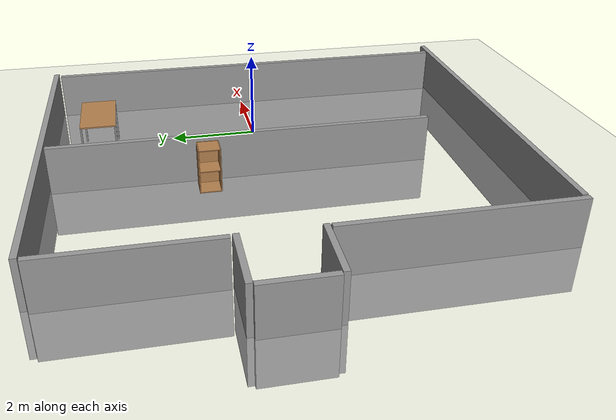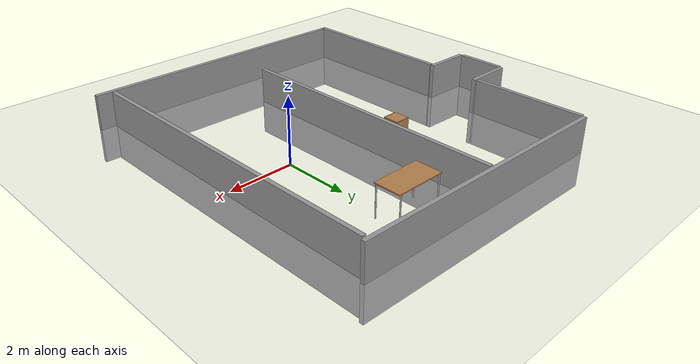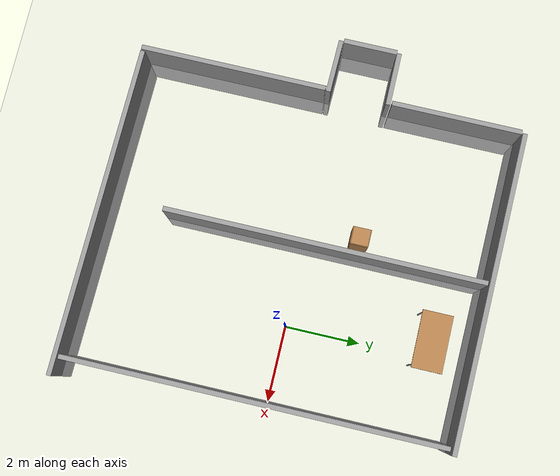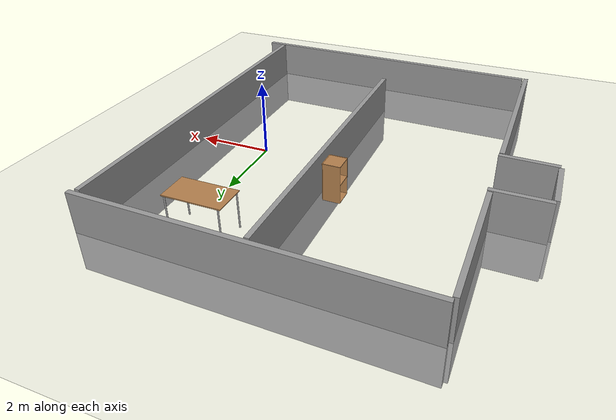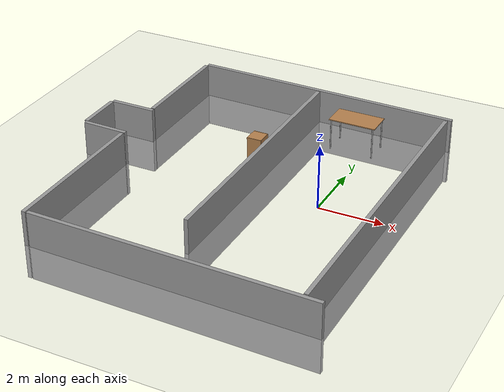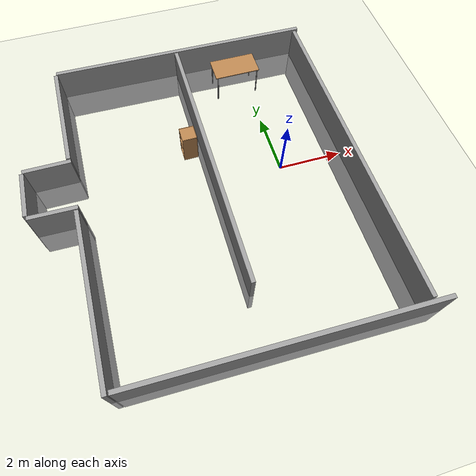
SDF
<sdf version="1.6">
 <world name="default">
  <model name="ground_plane">
   <static>1</static>
   <link name="link">
    <collision name="collision">
     <geometry><plane><normal>0 0 1</normal><size>100 100</size></plane></geometry>
     <surface>
      <contact><collide_bitmask>65535</collide_bitmask></contact>
      <friction><ode><mu>100</mu><mu2>50</mu2></ode></friction>
     </surface>
    </collision>
    <visual name="visual">
     <cast_shadows>0</cast_shadows>
     <geometry><plane><normal>0 0 1</normal><size>100 100</size></plane></geometry>
     <material>
      <script><uri>file://media/materials/scripts/gazebo.material</uri><name>Gazebo/Grey</name></script>
     </material>
    </visual>
   </link>
  </model>
  <model name="toiletenv">
   <link name="link_0">
    <inertial>
     <mass>3061.44</mass>
     <inertia><ixx>1709.99</ixx><ixy>0</ixy><ixz>0</ixz><iyy>1188.29</iyy><iyz>0</iyz><izz>529.767</izz></inertia>
    </inertial>
    <pose>-3.44068 0.35836 0 0 -0 0</pose>
    <gravity>0</gravity>
    <visual name="visual">
     <geometry><box><size>0.125789 1.43552 2.15452</size></box></geometry>
     <material>
      <lighting>1</lighting>
      <script><uri>file://media/materials/scripts/gazebo.material</uri><name>Gazebo/Grey</name></script>
      <shader type="vertex"><normal_map>__default__</normal_map></shader>
     </material>
    </visual>
    <collision name="collision">
     <geometry><box><size>0.125789 1.43552 2.15452</size></box></geometry>
     <surface>
      <friction>
       <ode><mu>1</mu><mu2>1</mu2><fdir1>0 0 0</fdir1><slip1>0</slip1><slip2>0</slip2></ode>
       <torsional>
        <coefficient>1</coefficient>
        <patch_radius>0</patch_radius>
        <surface_radius>0</surface_radius>
        <use_patch_radius>1</use_patch_radius>
        <ode><slip>0</slip></ode>
       </torsional>
      </friction>
      <bounce><restitution_coefficient>0</restitution_coefficient><threshold>1e+06</threshold></bounce>
      <contact>
       <collide_without_contact>0</collide_without_contact>
       <collide_without_contact_bitmask>1</collide_without_contact_bitmask>
       <collide_bitmask>1</collide_bitmask>
       <ode>
        <soft_cfm>0</soft_cfm>
        <soft_erp>0.2</soft_erp>
        <kp>1e+13</kp>
        <kd>1</kd>
        <max_vel>0.01</max_vel>
        <min_depth>0</min_depth>
       </ode>
       <bullet>
        <split_impulse>1</split_impulse>
        <split_impulse_penetration_threshold>-0.01</split_impulse_penetration_threshold>
        <soft_cfm>0</soft_cfm>
        <soft_erp>0.2</soft_erp>
        <kp>1e+13</kp>
        <kd>1</kd>
       </bullet>
      </contact>
     </surface>
    </collision>
   </link>
   <link name="link_0_clone">
    <inertial>
     <mass>3061.44</mass>
     <inertia><ixx>1709.99</ixx><ixy>0</ixy><ixz>0</ixz><iyy>1188.29</iyy><iyz>0</iyz><izz>529.767</izz></inertia>
    </inertial>
    <pose>-2.70872 1.14414 0 0 0 -1.57036</pose>
    <gravity>0</gravity>
    <visual name="visual">
     <geometry><box><size>0.125789 1.43552 2.15452</size></box></geometry>
     <material>
      <lighting>1</lighting>
      <script><uri>file://media/materials/scripts/gazebo.material</uri><name>Gazebo/Grey</name></script>
      <shader type="vertex"><normal_map>__default__</normal_map></shader>
     </material>
    </visual>
    <collision name="collision">
     <geometry><box><size>0.125789 1.43552 2.15452</size></box></geometry>
     <surface>
      <friction>
       <ode><mu>1</mu><mu2>1</mu2><fdir1>0 0 0</fdir1><slip1>0</slip1><slip2>0</slip2></ode>
       <torsional>
        <coefficient>1</coefficient>
        <patch_radius>0</patch_radius>
        <surface_radius>0</surface_radius>
        <use_patch_radius>1</use_patch_radius>
        <ode><slip>0</slip></ode>
       </torsional>
      </friction>
      <bounce><restitution_coefficient>0</restitution_coefficient><threshold>1e+06</threshold></bounce>
      <contact>
       <collide_without_contact>0</collide_without_contact>
       <collide_without_contact_bitmask>1</collide_without_contact_bitmask>
       <collide_bitmask>1</collide_bitmask>
       <ode>
        <soft_cfm>0</soft_cfm>
        <soft_erp>0.2</soft_erp>
        <kp>1e+13</kp>
        <kd>1</kd>
        <max_vel>0.01</max_vel>
        <min_depth>0</min_depth>
       </ode>
       <bullet>
        <split_impulse>1</split_impulse>
        <split_impulse_penetration_threshold>-0.01</split_impulse_penetration_threshold>
        <soft_cfm>0</soft_cfm>
        <soft_erp>0.2</soft_erp>
        <kp>1e+13</kp>
        <kd>1</kd>
       </bullet>
      </contact>
     </surface>
    </collision>
   </link>
   <link name="link_0_clone_0">
    <inertial>
     <mass>3061.44</mass>
     <inertia><ixx>1709.99</ixx><ixy>0</ixy><ixz>0</ixz><iyy>1188.29</iyy><iyz>0</iyz><izz>529.767</izz></inertia>
    </inertial>
    <pose>-2.70687 -0.448529 0 0 -0 1.54952</pose>
    <gravity>0</gravity>
    <visual name="visual">
     <geometry><box><size>0.125789 1.43552 2.15452</size></box></geometry>
     <material>
      <lighting>1</lighting>
      <script><uri>file://media/materials/scripts/gazebo.material</uri><name>Gazebo/Grey</name></script>
      <shader type="vertex"><normal_map>__default__</normal_map></shader>
     </material>
    </visual>
    <collision name="collision">
     <geometry><box><size>0.125789 1.43552 2.15452</size></box></geometry>
     <surface>
      <friction>
       <ode><mu>1</mu><mu2>1</mu2><fdir1>0 0 0</fdir1><slip1>0</slip1><slip2>0</slip2></ode>
       <torsional>
        <coefficient>1</coefficient>
        <patch_radius>0</patch_radius>
        <surface_radius>0</surface_radius>
        <use_patch_radius>1</use_patch_radius>
        <ode><slip>0</slip></ode>
       </torsional>
      </friction>
      <bounce><restitution_coefficient>0</restitution_coefficient><threshold>1e+06</threshold></bounce>
      <contact>
       <collide_without_contact>0</collide_without_contact>
       <collide_without_contact_bitmask>1</collide_without_contact_bitmask>
       <collide_bitmask>1</collide_bitmask>
       <ode>
        <soft_cfm>0</soft_cfm>
        <soft_erp>0.2</soft_erp>
        <kp>1e+13</kp>
        <kd>1</kd>
        <max_vel>0.01</max_vel>
        <min_depth>0</min_depth>
       </ode>
       <bullet>
        <split_impulse>1</split_impulse>
        <split_impulse_penetration_threshold>-0.01</split_impulse_penetration_threshold>
        <soft_cfm>0</soft_cfm>
        <soft_erp>0.2</soft_erp>
        <kp>1e+13</kp>
        <kd>1</kd>
       </bullet>
      </contact>
     </surface>
    </collision>
   </link>
   <link name="link_0_clone_1">
    <inertial>
     <mass>10647.6</mass>
     <inertia><ixx>26236.3</ixx><ixy>0</ixy><ixz>0</ixz><iyy>4132.83</iyy><iyz>0</iyz><izz>22131.5</izz></inertia>
    </inertial>
    <pose>-2.05907 -3.04924 0 0 -0 0</pose>
    <gravity>0</gravity>
    <visual name="visual">
     <geometry><box><size>0.125789 4.99268 2.15452</size></box></geometry>
     <material>
      <lighting>1</lighting>
      <script><uri>file://media/materials/scripts/gazebo.material</uri><name>Gazebo/Grey</name></script>
      <shader type="vertex"><normal_map>__default__</normal_map></shader>
     </material>
    </visual>
    <collision name="collision">
     <geometry><box><size>0.125789 4.99268 2.15452</size></box></geometry>
     <surface>
      <friction>
       <ode><mu>1</mu><mu2>1</mu2><fdir1>0 0 0</fdir1><slip1>0</slip1><slip2>0</slip2></ode>
       <torsional>
        <coefficient>1</coefficient>
        <patch_radius>0</patch_radius>
        <surface_radius>0</surface_radius>
        <use_patch_radius>1</use_patch_radius>
        <ode><slip>0</slip></ode>
       </torsional>
      </friction>
      <bounce><restitution_coefficient>0</restitution_coefficient><threshold>1e+06</threshold></bounce>
      <contact>
       <collide_without_contact>0</collide_without_contact>
       <collide_without_contact_bitmask>1</collide_without_contact_bitmask>
       <collide_bitmask>1</collide_bitmask>
       <ode>
        <soft_cfm>0</soft_cfm>
        <soft_erp>0.2</soft_erp>
        <kp>1e+13</kp>
        <kd>1</kd>
        <max_vel>0.01</max_vel>
        <min_depth>0</min_depth>
       </ode>
       <bullet>
        <split_impulse>1</split_impulse>
        <split_impulse_penetration_threshold>-0.01</split_impulse_penetration_threshold>
        <soft_cfm>0</soft_cfm>
        <soft_erp>0.2</soft_erp>
        <kp>1e+13</kp>
        <kd>1</kd>
       </bullet>
      </contact>
     </surface>
    </collision>
   </link>
   <link name="link_0_clone_2">
    <inertial>
     <mass>7404.1</mass>
     <inertia><ixx>10301.1</ixx><ixy>0</ixy><ixz>0</ixz><iyy>2873.89</iyy><iyz>0</iyz><izz>7446.75</izz></inertia>
    </inertial>
    <pose>-2.06068 2.98173 0 0 -0 0</pose>
    <gravity>0</gravity>
    <visual name="visual">
     <geometry><box><size>0.125789 3.47179 2.15452</size></box></geometry>
     <material>
      <lighting>1</lighting>
      <script><uri>file://media/materials/scripts/gazebo.material</uri><name>Gazebo/Grey</name></script>
      <shader type="vertex"><normal_map>__default__</normal_map></shader>
     </material>
    </visual>
    <collision name="collision">
     <geometry><box><size>0.125789 3.47179 2.15452</size></box></geometry>
     <surface>
      <friction>
       <ode><mu>1</mu><mu2>1</mu2><fdir1>0 0 0</fdir1><slip1>0</slip1><slip2>0</slip2></ode>
       <torsional>
        <coefficient>1</coefficient>
        <patch_radius>0</patch_radius>
        <surface_radius>0</surface_radius>
        <use_patch_radius>1</use_patch_radius>
        <ode><slip>0</slip></ode>
       </torsional>
      </friction>
      <bounce><restitution_coefficient>0</restitution_coefficient><threshold>1e+06</threshold></bounce>
      <contact>
       <collide_without_contact>0</collide_without_contact>
       <collide_without_contact_bitmask>1</collide_without_contact_bitmask>
       <collide_bitmask>1</collide_bitmask>
       <ode>
        <soft_cfm>0</soft_cfm>
        <soft_erp>0.2</soft_erp>
        <kp>1e+13</kp>
        <kd>1</kd>
        <max_vel>0.01</max_vel>
        <min_depth>0</min_depth>
       </ode>
       <bullet>
        <split_impulse>1</split_impulse>
        <split_impulse_penetration_threshold>-0.01</split_impulse_penetration_threshold>
        <soft_cfm>0</soft_cfm>
        <soft_erp>0.2</soft_erp>
        <kp>1e+13</kp>
        <kd>1</kd>
       </bullet>
      </contact>
     </surface>
    </collision>
   </link>
   <link name="link_0_clone_3">
    <inertial>
     <mass>18266.8</mass>
     <inertia><ixx>118745</ixx><ixy>0</ixy><ixz>0</ixz><iyy>7090.22</iyy><iyz>0</iyz><izz>111703</izz></inertia>
    </inertial>
    <pose>2.02981 0.357389 0 0 -0 0</pose>
    <gravity>0</gravity>
    <visual name="visual">
     <geometry><box><size>0.125789 8.56535 2.15452</size></box></geometry>
     <material>
      <lighting>1</lighting>
      <script><uri>file://media/materials/scripts/gazebo.material</uri><name>Gazebo/Grey</name></script>
      <shader type="vertex"><normal_map>__default__</normal_map></shader>
     </material>
    </visual>
    <collision name="collision">
     <geometry><box><size>0.125789 8.56535 2.15452</size></box></geometry>
     <surface>
      <friction>
       <ode><mu>1</mu><mu2>1</mu2><fdir1>0 0 0</fdir1><slip1>0</slip1><slip2>0</slip2></ode>
       <torsional>
        <coefficient>1</coefficient>
        <patch_radius>0</patch_radius>
        <surface_radius>0</surface_radius>
        <use_patch_radius>1</use_patch_radius>
        <ode><slip>0</slip></ode>
       </torsional>
      </friction>
      <bounce><restitution_coefficient>0</restitution_coefficient><threshold>1e+06</threshold></bounce>
      <contact>
       <collide_without_contact>0</collide_without_contact>
       <collide_without_contact_bitmask>1</collide_without_contact_bitmask>
       <collide_bitmask>1</collide_bitmask>
       <ode>
        <soft_cfm>0</soft_cfm>
        <soft_erp>0.2</soft_erp>
        <kp>1e+13</kp>
        <kd>1</kd>
        <max_vel>0.01</max_vel>
        <min_depth>0</min_depth>
       </ode>
       <bullet>
        <split_impulse>1</split_impulse>
        <split_impulse_penetration_threshold>-0.01</split_impulse_penetration_threshold>
        <soft_cfm>0</soft_cfm>
        <soft_erp>0.2</soft_erp>
        <kp>1e+13</kp>
        <kd>1</kd>
       </bullet>
      </contact>
     </surface>
    </collision>
   </link>
   <link name="link_0_clone_3_clone">
    <inertial>
     <mass>21541</mass>
     <inertia><ixx>191473</ixx><ixy>0</ixy><ixz>0</ixz><iyy>8361.12</iyy><iyz>0</iyz><izz>183169</izz></inertia>
    </inertial>
    <pose>6.30349 -0.503106 0 0 -0 0</pose>
    <gravity>0</gravity>
    <visual name="visual">
     <geometry><box><size>0.125789 10.1006 2.15452</size></box></geometry>
     <material>
      <lighting>1</lighting>
      <script><uri>file://media/materials/scripts/gazebo.material</uri><name>Gazebo/Grey</name></script>
      <shader type="vertex"><normal_map>__default__</normal_map></shader>
     </material>
    </visual>
    <collision name="collision">
     <geometry><box><size>0.125789 10.1006 2.15452</size></box></geometry>
     <surface>
      <friction>
       <ode><mu>1</mu><mu2>1</mu2><fdir1>0 0 0</fdir1><slip1>0</slip1><slip2>0</slip2></ode>
       <torsional>
        <coefficient>1</coefficient>
        <patch_radius>0</patch_radius>
        <surface_radius>0</surface_radius>
        <use_patch_radius>1</use_patch_radius>
        <ode><slip>0</slip></ode>
       </torsional>
      </friction>
      <bounce><restitution_coefficient>0</restitution_coefficient><threshold>1e+06</threshold></bounce>
      <contact>
       <collide_without_contact>0</collide_without_contact>
       <collide_without_contact_bitmask>1</collide_without_contact_bitmask>
       <collide_bitmask>1</collide_bitmask>
       <ode>
        <soft_cfm>0</soft_cfm>
        <soft_erp>0.2</soft_erp>
        <kp>1e+13</kp>
        <kd>1</kd>
        <max_vel>0.01</max_vel>
        <min_depth>0</min_depth>
       </ode>
       <bullet>
        <split_impulse>1</split_impulse>
        <split_impulse_penetration_threshold>-0.01</split_impulse_penetration_threshold>
        <soft_cfm>0</soft_cfm>
        <soft_erp>0.2</soft_erp>
        <kp>1e+13</kp>
        <kd>1</kd>
       </bullet>
      </contact>
     </surface>
    </collision>
   </link>
   <link name="link_0_clone_4">
    <inertial>
     <mass>18126.2</mass>
     <inertia><ixx>116131</ixx><ixy>0</ixy><ixz>0</ixz><iyy>7035.65</iyy><iyz>0</iyz><izz>109143</izz></inertia>
    </inertial>
    <pose>2.20964 4.73685 0 0 0 -1.587</pose>
    <gravity>0</gravity>
    <visual name="visual">
     <geometry><box><size>0.125789 8.49938 2.15452</size></box></geometry>
     <material>
      <lighting>1</lighting>
      <script><uri>file://media/materials/scripts/gazebo.material</uri><name>Gazebo/Grey</name></script>
      <shader type="vertex"><normal_map>__default__</normal_map></shader>
     </material>
    </visual>
    <collision name="collision">
     <geometry><box><size>0.125789 8.49938 2.15452</size></box></geometry>
     <surface>
      <friction>
       <ode><mu>1</mu><mu2>1</mu2><fdir1>0 0 0</fdir1><slip1>0</slip1><slip2>0</slip2></ode>
       <torsional>
        <coefficient>1</coefficient>
        <patch_radius>0</patch_radius>
        <surface_radius>0</surface_radius>
        <use_patch_radius>1</use_patch_radius>
        <ode><slip>0</slip></ode>
       </torsional>
      </friction>
      <bounce><restitution_coefficient>0</restitution_coefficient><threshold>1e+06</threshold></bounce>
      <contact>
       <collide_without_contact>0</collide_without_contact>
       <collide_without_contact_bitmask>1</collide_without_contact_bitmask>
       <collide_bitmask>1</collide_bitmask>
       <ode>
        <soft_cfm>0</soft_cfm>
        <soft_erp>0.2</soft_erp>
        <kp>1e+13</kp>
        <kd>1</kd>
        <max_vel>0.01</max_vel>
        <min_depth>0</min_depth>
       </ode>
       <bullet>
        <split_impulse>1</split_impulse>
        <split_impulse_penetration_threshold>-0.01</split_impulse_penetration_threshold>
        <soft_cfm>0</soft_cfm>
        <soft_erp>0.2</soft_erp>
        <kp>1e+13</kp>
        <kd>1</kd>
       </bullet>
      </contact>
     </surface>
    </collision>
   </link>
   <link name="link_0_clone_5">
    <inertial>
     <mass>18728.3</mass>
     <inertia><ixx>127604</ixx><ixy>0</ixy><ixz>0</ixz><iyy>7269.34</iyy><iyz>0</iyz><izz>120384</izz></inertia>
    </inertial>
    <pose>2.43307 -5.57761 0 0 0 -1.59076</pose>
    <gravity>0</gravity>
    <visual name="visual">
     <geometry><box><size>0.125789 8.78176 2.15452</size></box></geometry>
     <material>
      <lighting>1</lighting>
      <script><uri>file://media/materials/scripts/gazebo.material</uri><name>Gazebo/Grey</name></script>
      <shader type="vertex"><normal_map>__default__</normal_map></shader>
     </material>
    </visual>
    <collision name="collision">
     <geometry><box><size>0.125789 8.78176 2.15452</size></box></geometry>
     <surface>
      <friction>
       <ode><mu>1</mu><mu2>1</mu2><fdir1>0 0 0</fdir1><slip1>0</slip1><slip2>0</slip2></ode>
       <torsional>
        <coefficient>1</coefficient>
        <patch_radius>0</patch_radius>
        <surface_radius>0</surface_radius>
        <use_patch_radius>1</use_patch_radius>
        <ode><slip>0</slip></ode>
       </torsional>
      </friction>
      <bounce><restitution_coefficient>0</restitution_coefficient><threshold>1e+06</threshold></bounce>
      <contact>
       <collide_without_contact>0</collide_without_contact>
       <collide_without_contact_bitmask>1</collide_without_contact_bitmask>
       <collide_bitmask>1</collide_bitmask>
       <ode>
        <soft_cfm>0</soft_cfm>
        <soft_erp>0.2</soft_erp>
        <kp>1e+13</kp>
        <kd>1</kd>
        <max_vel>0.01</max_vel>
        <min_depth>0</min_depth>
       </ode>
       <bullet>
        <split_impulse>1</split_impulse>
        <split_impulse_penetration_threshold>-0.01</split_impulse_penetration_threshold>
        <soft_cfm>0</soft_cfm>
        <soft_erp>0.2</soft_erp>
        <kp>1e+13</kp>
        <kd>1</kd>
       </bullet>
      </contact>
     </surface>
    </collision>
   </link>
   <static>1</static>
   <pose>-4.22285 0.175339 0 0 -0 0</pose>
  </model>
  <model name="table">
   <static>1</static>
   <link name="link">
    <collision name="surface">
     <pose>0 0 1 0 -0 0</pose>
     <geometry><box><size>1.5 0.8 0.03</size></box></geometry>
     <surface><friction><ode><mu>0.6</mu><mu2>0.6</mu2></ode></friction></surface>
    </collision>
    <visual name="visual1">
     <pose>0 0 1 0 -0 0</pose>
     <geometry><box><size>1.5 0.8 0.03</size></box></geometry>
     <material>
      <script><uri>file://media/materials/scripts/gazebo.material</uri><name>Gazebo/Wood</name></script>
     </material>
    </visual>
    <collision name="front_left_leg">
     <pose>0.68 0.38 0.5 0 -0 0</pose>
     <geometry><cylinder><radius>0.02</radius><length>1</length></cylinder></geometry>
    </collision>
    <visual name="front_left_leg">
     <pose>0.68 0.38 0.5 0 -0 0</pose>
     <geometry><cylinder><radius>0.02</radius><length>1</length></cylinder></geometry>
     <material>
      <script><uri>file://media/materials/scripts/gazebo.material</uri><name>Gazebo/Grey</name></script>
     </material>
    </visual>
    <collision name="front_right_leg">
     <pose>0.68 -0.38 0.5 0 -0 0</pose>
     <geometry><cylinder><radius>0.02</radius><length>1</length></cylinder></geometry>
    </collision>
    <visual name="front_right_leg">
     <pose>0.68 -0.38 0.5 0 -0 0</pose>
     <geometry><cylinder><radius>0.02</radius><length>1</length></cylinder></geometry>
     <material>
      <script><uri>file://media/materials/scripts/gazebo.material</uri><name>Gazebo/Grey</name></script>
     </material>
    </visual>
    <collision name="back_right_leg">
     <pose>-0.68 -0.38 0.5 0 -0 0</pose>
     <geometry><cylinder><radius>0.02</radius><length>1</length></cylinder></geometry>
    </collision>
    <visual name="back_right_leg">
     <pose>-0.68 -0.38 0.5 0 -0 0</pose>
     <geometry><cylinder><radius>0.02</radius><length>1</length></cylinder></geometry>
     <material>
      <script><uri>file://media/materials/scripts/gazebo.material</uri><name>Gazebo/Grey</name></script>
     </material>
    </visual>
    <collision name="back_left_leg">
     <pose>-0.68 0.38 0.5 0 -0 0</pose>
     <geometry><cylinder><radius>0.02</radius><length>1</length></cylinder></geometry>
    </collision>
    <visual name="back_left_leg">
     <pose>-0.68 0.38 0.5 0 -0 0</pose>
     <geometry><cylinder><radius>0.02</radius><length>1</length></cylinder></geometry>
     <material>
      <script><uri>file://media/materials/scripts/gazebo.material</uri><name>Gazebo/Grey</name></script>
     </material>
    </visual>
   </link>
   <pose>-0.426692 3.73604 0 0 -0 0</pose>
  </model>
  <model name="cabinet">
   <static>1</static>
   <link name="cabinet_bottom_plate">
    <inertial>
     <pose>0 0 -1 0 -0 0</pose>
     <inertia><ixx>2.05</ixx><ixy>0</ixy><ixz>0</ixz><iyy>2.05</iyy><iyz>0</iyz><izz>2.05</izz></inertia>
     <mass>25</mass>
    </inertial>
    <collision name="cabinet_bottom_plate_geom">
     <pose>0 0 0.01 0 -0 0</pose>
     <geometry><box><size>0.45 0.45 0.02</size></box></geometry>
    </collision>
    <visual name="cabinet_bottom_plate_geom_visual">
     <pose>0 0 0.01 0 -0 0</pose>
     <geometry><box><size>0.45 0.45 0.02</size></box></geometry>
     <material>
      <script><uri>file://media/materials/scripts/gazebo.material</uri><name>Gazebo/Wood</name></script>
     </material>
    </visual>
    <collision name="cabinet_bottom_plate_geom_cabinet_back_plate">
     <pose>0.235 0 0.51 0 -0 0</pose>
     <geometry><box><size>0.02 0.45 1.02</size></box></geometry>
    </collision>
    <visual name="cabinet_bottom_plate_geom_cabinet_back_plate_visual">
     <pose>0.235 0 0.51 0 -0 0</pose>
     <geometry><box><size>0.02 0.45 1.02</size></box></geometry>
     <material>
      <script><uri>file://media/materials/scripts/gazebo.material</uri><name>Gazebo/Wood</name></script>
     </material>
    </visual>
    <collision name="cabinet_bottom_plate_geom_cabinet_left_plate">
     <pose>0 0.235 0.51 0 -0 0</pose>
     <geometry><box><size>0.45 0.02 1.02</size></box></geometry>
    </collision>
    <visual name="cabinet_bottom_plate_geom_cabinet_left_plate_visual">
     <pose>0 0.235 0.51 0 -0 0</pose>
     <geometry><box><size>0.45 0.02 1.02</size></box></geometry>
     <material>
      <script><uri>file://media/materials/scripts/gazebo.material</uri><name>Gazebo/Wood</name></script>
     </material>
    </visual>
    <collision name="cabinet_bottom_plate_geom_cabinet_middle_plate">
     <pose>0 0 0.51 0 -0 0</pose>
     <geometry><box><size>0.45 0.45 0.02</size></box></geometry>
    </collision>
    <visual name="cabinet_bottom_plate_geom_cabinet_middle_plate_visual">
     <pose>0 0 0.51 0 -0 0</pose>
     <geometry><box><size>0.45 0.45 0.02</size></box></geometry>
     <material>
      <script><uri>file://media/materials/scripts/gazebo.material</uri><name>Gazebo/Wood</name></script>
     </material>
    </visual>
    <collision name="cabinet_bottom_plate_geom_cabinet_right_plate">
     <pose>0 -0.235 0.51 0 -0 0</pose>
     <geometry><box><size>0.45 0.02 1.02</size></box></geometry>
    </collision>
    <visual name="cabinet_bottom_plate_geom_cabinet_right_plate_visual">
     <pose>0 -0.235 0.51 0 -0 0</pose>
     <geometry><box><size>0.45 0.02 1.02</size></box></geometry>
     <material>
      <script><uri>file://media/materials/scripts/gazebo.material</uri><name>Gazebo/Wood</name></script>
     </material>
    </visual>
    <collision name="cabinet_bottom_plate_geom_cabinet_top_plate">
     <pose>0 0 1.01 0 -0 0</pose>
     <geometry><box><size>0.45 0.45 0.02</size></box></geometry>
    </collision>
    <visual name="cabinet_bottom_plate_geom_cabinet_top_plate_visual">
     <pose>0 0 1.01 0 -0 0</pose>
     <geometry><box><size>0.45 0.45 0.02</size></box></geometry>
     <material>
      <script><uri>file://media/materials/scripts/gazebo.material</uri><name>Gazebo/Wood</name></script>
     </material>
    </visual>
   </link>
   <pose>-2.64528 1.38874 0 0 -0 0</pose>
  </model>
 </world>
</sdf>
